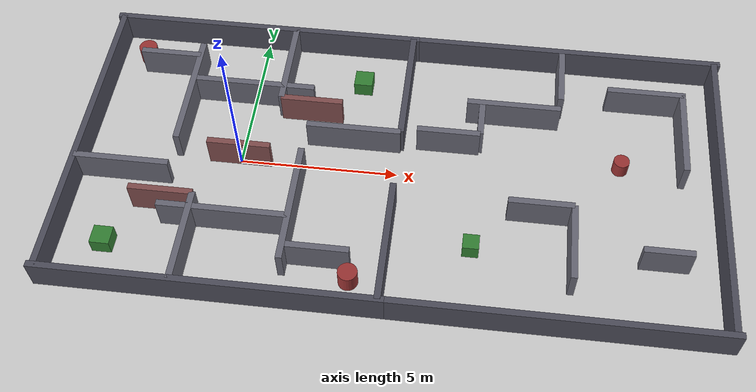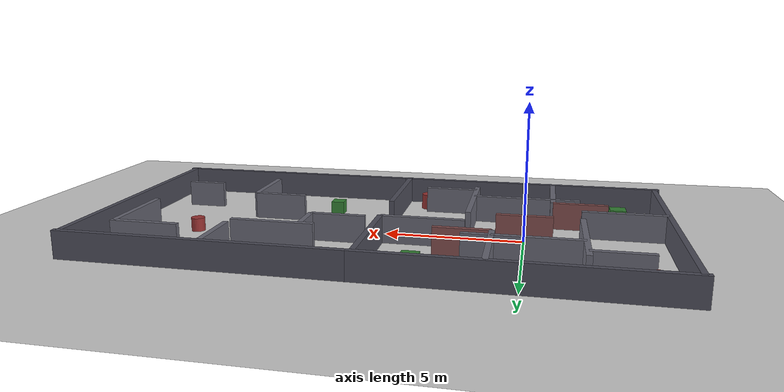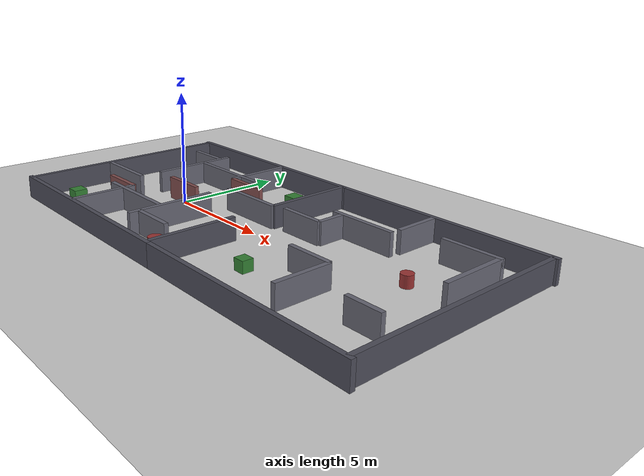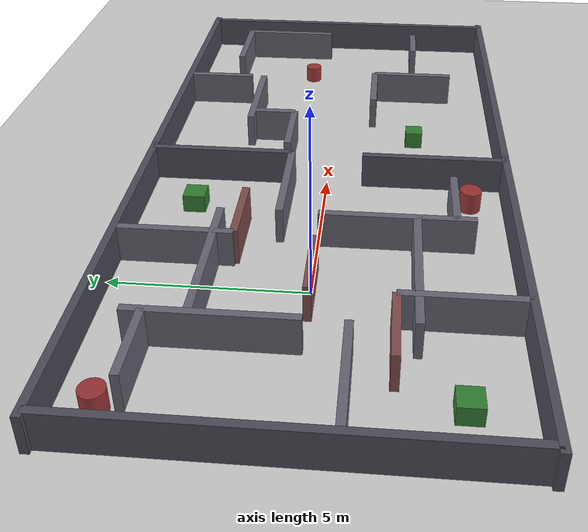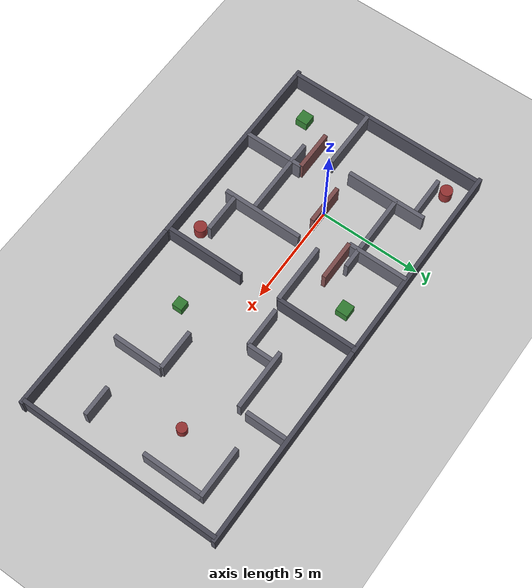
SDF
<?xml version="1.0" ?>
<sdf version="1.9">
  <world name="slam_maze">

    <physics name="1ms" type="dart">
      <max_step_size>0.001</max_step_size>
      <real_time_factor>1.0</real_time_factor>
      <real_time_update_rate>1000</real_time_update_rate>
    </physics>

    <scene>
      <shadows>true</shadows>
      <ambient>0.4 0.4 0.4 1.0</ambient>
      <background>0.7 0.7 1.0 1.0</background>
    </scene>

    <light type="directional" name="sun">
      <cast_shadows>true</cast_shadows>
      <pose>0 0 10 0 0 0</pose>
      <diffuse>0.8 0.8 0.8 1</diffuse>
      <specular>0.2 0.2 0.2 1</specular>
      <attenuation>
        <range>1000</range>
        <constant>0.9</constant>
        <linear>0.01</linear>
        <quadratic>0.001</quadratic>
      </attenuation>
      <direction>-0.5 0.1 -0.9</direction>
    </light>

    <model name="ground_plane">
      <static>true</static>
      <link name="link">
        <collision name="collision">
          <geometry>
            <plane>
              <normal>0 0 1</normal>
              <size>50 50</size>
            </plane>
          </geometry>
        </collision>
        <visual name="visual">
          <geometry>
            <plane>
              <normal>0 0 1</normal>
              <size>50 50</size>
            </plane>
          </geometry>
          <material>
            <ambient>0.8 0.8 0.8 1</ambient>
            <diffuse>0.8 0.8 0.8 1</diffuse>
            <specular>0.8 0.8 0.8 1</specular>
          </material>
        </visual>
      </link>
    </model>

    <!-- 外墙 (10m x 10m) -->
    <model name="wall_outer_north">
      <static>true</static>
      <pose>0 5.0 0.5 0 0 0</pose>
      <link name="link">
        <collision name="collision"><geometry><box><size>10.4 0.2 1.0</size></box></geometry></collision>
        <visual name="visual"><geometry><box><size>10.4 0.2 1.0</size></box></geometry>
          <material><ambient>0.3 0.3 0.35 1</ambient><diffuse>0.3 0.3 0.35 1</diffuse></material>
        </visual>
      </link>
    </model>
    <model name="wall_outer_south">
      <static>true</static>
      <pose>0 -5.0 0.5 0 0 0</pose>
      <link name="link">
        <collision name="collision"><geometry><box><size>10.4 0.2 1.0</size></box></geometry></collision>
        <visual name="visual"><geometry><box><size>10.4 0.2 1.0</size></box></geometry>
          <material><ambient>0.3 0.3 0.35 1</ambient><diffuse>0.3 0.3 0.35 1</diffuse></material>
        </visual>
      </link>
    </model>
    <model name="wall_outer_west">
      <static>true</static>
      <pose>-5.0 0 0.5 0 0 0</pose>
      <link name="link">
        <collision name="collision"><geometry><box><size>0.2 10.0 1.0</size></box></geometry></collision>
        <visual name="visual"><geometry><box><size>0.2 10.0 1.0</size></box></geometry>
          <material><ambient>0.3 0.3 0.35 1</ambient><diffuse>0.3 0.3 0.35 1</diffuse></material>
        </visual>
      </link>
    </model>
    <model name="wall_outer_east_north">
      <static>true</static>
      <pose>5.0 3.0 0.5 0 0 0</pose>
      <link name="link">
        <collision name="collision"><geometry><box><size>0.2 4.0 1.0</size></box></geometry></collision>
        <visual name="visual"><geometry><box><size>0.2 4.0 1.0</size></box></geometry>
          <material><ambient>0.3 0.3 0.35 1</ambient><diffuse>0.3 0.3 0.35 1</diffuse></material>
        </visual>
      </link>
    </model>

    <model name="wall_outer_east_south">
      <static>true</static>
      <pose>5.0 -3.0 0.5 0 0 0</pose>
      <link name="link">
        <collision name="collision"><geometry><box><size>0.2 4.0 1.0</size></box></geometry></collision>
        <visual name="visual"><geometry><box><size>0.2 4.0 1.0</size></box></geometry>
          <material><ambient>0.3 0.3 0.35 1</ambient><diffuse>0.3 0.3 0.35 1</diffuse></material>
        </visual>
      </link>
    </model>

    <!-- 内部迷宫墙壁 -->
    <model name="wall_inner_01">
      <static>true</static>
      <pose>-2.0 2.0 0.5 0 0 0</pose>
      <link name="link">
        <collision name="collision"><geometry><box><size>0.2 4.0 1.0</size></box></geometry></collision>
        <visual name="visual"><geometry><box><size>0.2 4.0 1.0</size></box></geometry>
          <material><ambient>0.4 0.4 0.45 1</ambient><diffuse>0.4 0.4 0.45 1</diffuse></material>
        </visual>
      </link>
    </model>

    <model name="wall_inner_02">
      <static>true</static>
      <pose>2.0 -2.0 0.5 0 0 0</pose>
      <link name="link">
        <collision name="collision"><geometry><box><size>0.2 4.0 1.0</size></box></geometry></collision>
        <visual name="visual"><geometry><box><size>0.2 4.0 1.0</size></box></geometry>
          <material><ambient>0.4 0.4 0.45 1</ambient><diffuse>0.4 0.4 0.45 1</diffuse></material>
        </visual>
      </link>
    </model>

    <model name="wall_inner_03">
      <static>true</static>
      <pose>0.0 2.5 0.5 0 0 0</pose>
      <link name="link">
        <collision name="collision"><geometry><box><size>4.0 0.2 1.0</size></box></geometry></collision>
        <visual name="visual"><geometry><box><size>4.0 0.2 1.0</size></box></geometry>
          <material><ambient>0.4 0.4 0.45 1</ambient><diffuse>0.4 0.4 0.45 1</diffuse></material>
        </visual>
      </link>
    </model>

    <model name="wall_inner_04">
      <static>true</static>
      <pose>0.0 -2.5 0.5 0 0 0</pose>
      <link name="link">
        <collision name="collision"><geometry><box><size>4.0 0.2 1.0</size></box></geometry></collision>
        <visual name="visual"><geometry><box><size>4.0 0.2 1.0</size></box></geometry>
          <material><ambient>0.4 0.4 0.45 1</ambient><diffuse>0.4 0.4 0.45 1</diffuse></material>
        </visual>
      </link>
    </model>

    <model name="wall_inner_05">
      <static>true</static>
      <pose>-3.5 -1.0 0.5 0 0 0</pose>
      <link name="link">
        <collision name="collision"><geometry><box><size>3.0 0.2 1.0</size></box></geometry></collision>
        <visual name="visual"><geometry><box><size>3.0 0.2 1.0</size></box></geometry>
          <material><ambient>0.4 0.4 0.45 1</ambient><diffuse>0.4 0.4 0.45 1</diffuse></material>
        </visual>
      </link>
    </model>

    <model name="wall_inner_06">
      <static>true</static>
      <pose>3.5 1.0 0.5 0 0 0</pose>
      <link name="link">
        <collision name="collision"><geometry><box><size>3.0 0.2 1.0</size></box></geometry></collision>
        <visual name="visual"><geometry><box><size>3.0 0.2 1.0</size></box></geometry>
          <material><ambient>0.4 0.4 0.45 1</ambient><diffuse>0.4 0.4 0.45 1</diffuse></material>
        </visual>
      </link>
    </model>

    <model name="wall_inner_07">
      <static>true</static>
      <pose>-1.0 -3.5 0.5 0 0 0</pose>
      <link name="link">
        <collision name="collision"><geometry><box><size>0.2 3.0 1.0</size></box></geometry></collision>
        <visual name="visual"><geometry><box><size>0.2 3.0 1.0</size></box></geometry>
          <material><ambient>0.4 0.4 0.45 1</ambient><diffuse>0.4 0.4 0.45 1</diffuse></material>
        </visual>
      </link>
    </model>

    <model name="wall_inner_08">
      <static>true</static>
      <pose>1.0 3.5 0.5 0 0 0</pose>
      <link name="link">
        <collision name="collision"><geometry><box><size>0.2 3.0 1.0</size></box></geometry></collision>
        <visual name="visual"><geometry><box><size>0.2 3.0 1.0</size></box></geometry>
          <material><ambient>0.4 0.4 0.45 1</ambient><diffuse>0.4 0.4 0.45 1</diffuse></material>
        </visual>
      </link>
    </model>

    <model name="wall_inner_09">
      <static>true</static>
      <pose>-3.0 3.5 0.5 0 0 0</pose>
      <link name="link">
        <collision name="collision"><geometry><box><size>2.0 0.2 1.0</size></box></geometry></collision>
        <visual name="visual"><geometry><box><size>2.0 0.2 1.0</size></box></geometry>
          <material><ambient>0.4 0.4 0.45 1</ambient><diffuse>0.4 0.4 0.45 1</diffuse></material>
        </visual>
      </link>
    </model>

    <model name="wall_inner_10">
      <static>true</static>
      <pose>3.0 -3.5 0.5 0 0 0</pose>
      <link name="link">
        <collision name="collision"><geometry><box><size>2.0 0.2 1.0</size></box></geometry></collision>
        <visual name="visual"><geometry><box><size>2.0 0.2 1.0</size></box></geometry>
          <material><ambient>0.4 0.4 0.45 1</ambient><diffuse>0.4 0.4 0.45 1</diffuse></material>
        </visual>
      </link>
    </model>

    <model name="wall_inner_11">
      <static>true</static>
      <pose>0.0 0.0 0.5 0 0 1.5708</pose>
      <link name="link">
        <collision name="collision"><geometry><box><size>0.2 2.0 1.0</size></box></geometry></collision>
        <visual name="visual"><geometry><box><size>0.2 2.0 1.0</size></box></geometry>
          <material><ambient>0.5 0.3 0.3 1</ambient><diffuse>0.5 0.3 0.3 1</diffuse></material>
        </visual>
      </link>
    </model>

    <model name="wall_inner_12">
      <static>true</static>
      <pose>-2.0 -2.0 0.5 0 0 0</pose>
      <link name="link">
        <collision name="collision"><geometry><box><size>2.0 0.2 1.0</size></box></geometry></collision>
        <visual name="visual"><geometry><box><size>2.0 0.2 1.0</size></box></geometry>
          <material><ambient>0.5 0.3 0.3 1</ambient><diffuse>0.5 0.3 0.3 1</diffuse></material>
        </visual>
      </link>
    </model>

    <model name="wall_inner_13">
      <static>true</static>
      <pose>2.0 2.0 0.5 0 0 0</pose>
      <link name="link">
        <collision name="collision"><geometry><box><size>2.0 0.2 1.0</size></box></geometry></collision>
        <visual name="visual"><geometry><box><size>2.0 0.2 1.0</size></box></geometry>
          <material><ambient>0.5 0.3 0.3 1</ambient><diffuse>0.5 0.3 0.3 1</diffuse></material>
        </visual>
      </link>
    </model>

    <!-- 障碍物柱子 -->
    <model name="obstacle_01">
      <static>true</static>
      <pose>-4.0 4.0 0.3 0 0 0</pose>
      <link name="link">
        <collision name="collision"><geometry><cylinder><radius>0.3</radius><length>0.6</length></cylinder></geometry></collision>
        <visual name="visual"><geometry><cylinder><radius>0.3</radius><length>0.6</length></cylinder></geometry>
          <material><ambient>0.6 0.2 0.2 1</ambient><diffuse>0.6 0.2 0.2 1</diffuse></material>
        </visual>
      </link>
    </model>

    <model name="obstacle_02">
      <static>true</static>
      <pose>4.0 -4.0 0.3 0 0 0</pose>
      <link name="link">
        <collision name="collision"><geometry><cylinder><radius>0.3</radius><length>0.6</length></cylinder></geometry></collision>
        <visual name="visual"><geometry><cylinder><radius>0.3</radius><length>0.6</length></cylinder></geometry>
          <material><ambient>0.6 0.2 0.2 1</ambient><diffuse>0.6 0.2 0.2 1</diffuse></material>
        </visual>
      </link>
    </model>

    <model name="obstacle_03">
      <static>true</static>
      <pose>3.5 3.5 0.25 0 0 0</pose>
      <link name="link">
        <collision name="collision"><geometry><box><size>0.6 0.6 0.5</size></box></geometry></collision>
        <visual name="visual"><geometry><box><size>0.6 0.6 0.5</size></box></geometry>
          <material><ambient>0.2 0.5 0.2 1</ambient><diffuse>0.2 0.5 0.2 1</diffuse></material>
        </visual>
      </link>
    </model>

    <model name="obstacle_04">
      <static>true</static>
      <pose>-3.5 -3.5 0.25 0 0 0</pose>
      <link name="link">
        <collision name="collision"><geometry><box><size>0.6 0.6 0.5</size></box></geometry></collision>
        <visual name="visual"><geometry><box><size>0.6 0.6 0.5</size></box></geometry>
          <material><ambient>0.2 0.5 0.2 1</ambient><diffuse>0.2 0.5 0.2 1</diffuse></material>
        </visual>
      </link>
    </model>

    <!-- New outer boundary walls for the extended eastward region -->
    <model name="wall_new_north">
      <static>true</static>
      <pose>10.2 5.0 0.5 0 0 0</pose>
      <link name="link">
        <collision name="collision"><geometry><box><size>10.0 0.2 1.0</size></box></geometry></collision>
        <visual name="visual"><geometry><box><size>10.0 0.2 1.0</size></box></geometry>
          <material><ambient>0.3 0.3 0.35 1</ambient><diffuse>0.3 0.3 0.35 1</diffuse></material>
        </visual>
      </link>
    </model>

    <model name="wall_new_south">
      <static>true</static>
      <pose>10.2 -5.0 0.5 0 0 0</pose>
      <link name="link">
        <collision name="collision"><geometry><box><size>10.0 0.2 1.0</size></box></geometry></collision>
        <visual name="visual"><geometry><box><size>10.0 0.2 1.0</size></box></geometry>
          <material><ambient>0.3 0.3 0.35 1</ambient><diffuse>0.3 0.3 0.35 1</diffuse></material>
        </visual>
      </link>
    </model>

    <model name="wall_new_east">
      <static>true</static>
      <pose>15.0 0.0 0.5 0 0 0</pose>
      <link name="link">
        <collision name="collision"><geometry><box><size>0.2 10.0 1.0</size></box></geometry></collision>
        <visual name="visual"><geometry><box><size>0.2 10.0 1.0</size></box></geometry>
          <material><ambient>0.3 0.3 0.35 1</ambient><diffuse>0.3 0.3 0.35 1</diffuse></material>
        </visual>
      </link>
    </model>

    <!-- New internal elements inside the extended region -->
    <model name="wall_new_inner_01">
      <static>true</static>
      <pose>8.5 2.5 0.5 0 0 0</pose>
      <link name="link">
        <collision name="collision"><geometry><box><size>3.0 0.2 1.0</size></box></geometry></collision>
        <visual name="visual"><geometry><box><size>3.0 0.2 1.0</size></box></geometry>
          <material><ambient>0.4 0.4 0.45 1</ambient><diffuse>0.4 0.4 0.45 1</diffuse></material>
        </visual>
      </link>
    </model>

    <model name="wall_new_inner_02">
      <static>true</static>
      <pose>10.0 3.9 0.5 0 0 0</pose>
      <link name="link">
        <collision name="collision"><geometry><box><size>0.2 2.0 1.0</size></box></geometry></collision>
        <visual name="visual"><geometry><box><size>0.2 2.0 1.0</size></box></geometry>
          <material><ambient>0.4 0.4 0.45 1</ambient><diffuse>0.4 0.4 0.45 1</diffuse></material>
        </visual>
      </link>
    </model>

    <model name="wall_new_inner_03">
      <static>true</static>
      <pose>13.25 -2.5 0.5 0 0 0</pose>
      <link name="link">
        <collision name="collision"><geometry><box><size>1.5 0.2 1.0</size></box></geometry></collision>
        <visual name="visual"><geometry><box><size>1.5 0.2 1.0</size></box></geometry>
          <material><ambient>0.4 0.4 0.45 1</ambient><diffuse>0.4 0.4 0.45 1</diffuse></material>
        </visual>
      </link>
    </model>

    <model name="obstacle_box_1">
      <static>true</static>
      <pose>7.5 -2.5 0.25 0 0 0</pose>
      <link name="link">
        <collision name="collision"><geometry><box><size>0.5 0.5 0.5</size></box></geometry></collision>
        <visual name="visual"><geometry><box><size>0.5 0.5 0.5</size></box></geometry>
          <material><ambient>0.2 0.5 0.2 1</ambient><diffuse>0.2 0.5 0.2 1</diffuse></material>
        </visual>
      </link>
    </model>

    <model name="obstacle_cylinder_1">
      <static>true</static>
      <pose>12.0 1.0 0.25 0 0 0</pose>
      <link name="link">
        <collision name="collision"><geometry><cylinder><radius>0.25</radius><length>0.5</length></cylinder></geometry></collision>
        <visual name="visual"><geometry><cylinder><radius>0.25</radius><length>0.5</length></cylinder></geometry>
          <material><ambient>0.6 0.2 0.2 1</ambient><diffuse>0.6 0.2 0.2 1</diffuse></material>
        </visual>
      </link>
    </model>

    <model name="wall_new_inner_04">
      <static>true</static>
      <pose>6.5 1.2 0.5 0 0 0</pose>
      <link name="link">
        <collision name="collision"><geometry><box><size>2.0 0.2 1.0</size></box></geometry></collision>
        <visual name="visual"><geometry><box><size>2.0 0.2 1.0</size></box></geometry>
          <material><ambient>0.4 0.4 0.45 1</ambient><diffuse>0.4 0.4 0.45 1</diffuse></material>
        </visual>
      </link>
    </model>

    <model name="wall_new_inner_05">
      <static>true</static>
      <pose>7.5 1.8 0.5 0 0 0</pose>
      <link name="link">
        <collision name="collision"><geometry><box><size>0.2 1.2 1.0</size></box></geometry></collision>
        <visual name="visual"><geometry><box><size>0.2 1.2 1.0</size></box></geometry>
          <material><ambient>0.4 0.4 0.45 1</ambient><diffuse>0.4 0.4 0.45 1</diffuse></material>
        </visual>
      </link>
    </model>

    <model name="wall_new_inner_06">
      <static>true</static>
      <pose>9.5 -1.2 0.5 0 0 0</pose>
      <link name="link">
        <collision name="collision"><geometry><box><size>2.0 0.2 1.0</size></box></geometry></collision>
        <visual name="visual"><geometry><box><size>2.0 0.2 1.0</size></box></geometry>
          <material><ambient>0.4 0.4 0.45 1</ambient><diffuse>0.4 0.4 0.45 1</diffuse></material>
        </visual>
      </link>
    </model>

    <model name="wall_new_inner_07">
      <static>true</static>
      <pose>10.5 -2.45 0.5 0 0 0</pose>
      <link name="link">
        <collision name="collision"><geometry><box><size>0.2 2.5 1.0</size></box></geometry></collision>
        <visual name="visual"><geometry><box><size>0.2 2.5 1.0</size></box></geometry>
          <material><ambient>0.4 0.4 0.45 1</ambient><diffuse>0.4 0.4 0.45 1</diffuse></material>
        </visual>
      </link>
    </model>

    <model name="wall_new_inner_08">
      <static>true</static>
      <pose>12.75 3.5 0.5 0 0 0</pose>
      <link name="link">
        <collision name="collision"><geometry><box><size>2.5 0.2 1.0</size></box></geometry></collision>
        <visual name="visual"><geometry><box><size>2.5 0.2 1.0</size></box></geometry>
          <material><ambient>0.4 0.4 0.45 1</ambient><diffuse>0.4 0.4 0.45 1</diffuse></material>
        </visual>
      </link>
    </model>

    <model name="wall_new_inner_09">
      <static>true</static>
      <pose>13.9 2.0 0.5 0 0 0</pose>
      <link name="link">
        <collision name="collision"><geometry><box><size>0.2 3.0 1.0</size></box></geometry></collision>
        <visual name="visual"><geometry><box><size>0.2 3.0 1.0</size></box></geometry>
          <material><ambient>0.4 0.4 0.45 1</ambient><diffuse>0.4 0.4 0.45 1</diffuse></material>
        </visual>
      </link>
    </model>

    <!-- Gz Sim 系统插件 -->
    <plugin filename="gz-sim-scene-broadcaster-system"
            name="gz::sim::systems::SceneBroadcaster"/>
    <plugin filename="gz-sim-user-commands-system"
            name="gz::sim::systems::UserCommands"/>
    <plugin filename="gz-sim-sensors-system"
            name="gz::sim::systems::Sensors">
      <render_engine>ogre2</render_engine>
    </plugin>
    <plugin filename="gz-sim-physics-system"
            name="gz::sim::systems::Physics"/>
    <plugin filename="gz-sim-imu-system"
            name="gz::sim::systems::Imu"/>

  </world>
</sdf>
